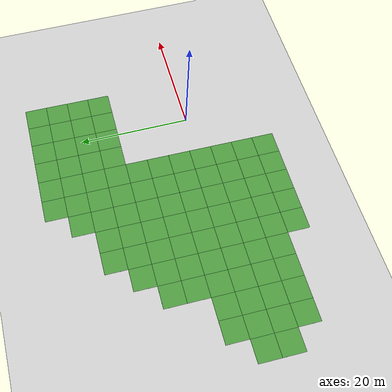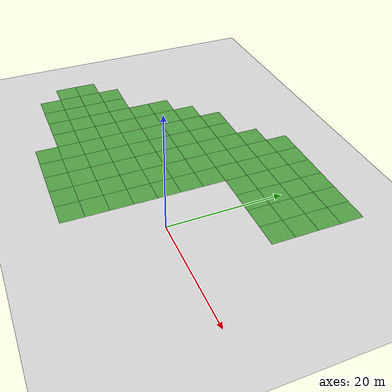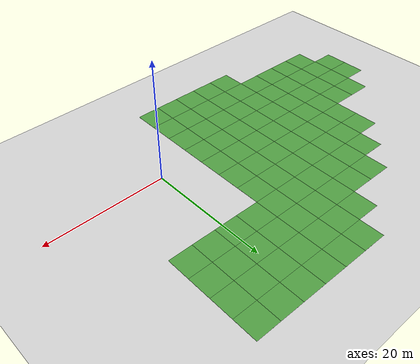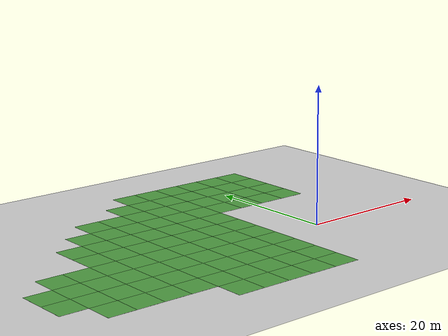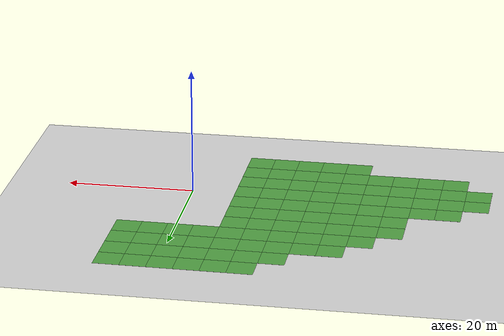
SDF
<sdf version="1.7">
 <world name="default">
  <model name="ground_plane">
   <static>1</static>
   <link name="link">
    <collision name="collision">
     <laser_retro>100</laser_retro>
     <geometry><plane><normal>0 0 1</normal><size>100 100</size></plane></geometry>
     <surface><friction><ode><mu>100</mu><mu2>50</mu2></ode></friction></surface>
    </collision>
    <visual name="visual">
     <laser_retro>100</laser_retro>
     <cast_shadows>0</cast_shadows>
     <geometry><plane><normal>0 0 1</normal><size>100 100</size></plane></geometry>
     <material>
      <script><uri>file://media/materials/scripts/gazebo.material</uri><name>Gazebo/Grey</name></script>
     </material>
    </visual>
   </link>
  </model>
  <model name="grass_plane_0">
   <static>1</static>
   <link name="link">
    <collision name="collision">
     <geometry><plane><normal>0 0 1</normal><size>100 100</size></plane></geometry>
     <surface><friction><ode><mu>0.5</mu><mu2>0.5</mu2></ode></friction></surface>
    </collision>
    <visual name="visual_0">
     <pose>-8 -8 0 0 -0 0</pose>
     <cast_shadows>0</cast_shadows>
     <geometry><plane><normal>0 0 1</normal><size>4 4</size></plane></geometry>
     <material>
      <script>
       <uri>model://grass_plane/materials/scripts</uri>
       <uri>model://grass_plane/materials/textures</uri>
       <name>vrc/grass</name>
      </script>
     </material>
    </visual>
    <visual name="visual_1">
     <pose>-4 -8 0 0 -0 0</pose>
     <cast_shadows>0</cast_shadows>
     <geometry><plane><normal>0 0 1</normal><size>4 4</size></plane></geometry>
     <material>
      <script>
       <uri>model://grass_plane/materials/scripts</uri>
       <uri>model://grass_plane/materials/textures</uri>
       <name>vrc/grass</name>
      </script>
     </material>
    </visual>
    <visual name="visual_2">
     <pose>0 -8 0 0 -0 0</pose>
     <cast_shadows>0</cast_shadows>
     <geometry><plane><normal>0 0 1</normal><size>4 4</size></plane></geometry>
     <material>
      <script>
       <uri>model://grass_plane/materials/scripts</uri>
       <uri>model://grass_plane/materials/textures</uri>
       <name>vrc/grass</name>
      </script>
     </material>
    </visual>
    <visual name="visual_3">
     <pose>4 -8 0 0 -0 0</pose>
     <cast_shadows>0</cast_shadows>
     <geometry><plane><normal>0 0 1</normal><size>4 4</size></plane></geometry>
     <material>
      <script>
       <uri>model://grass_plane/materials/scripts</uri>
       <uri>model://grass_plane/materials/textures</uri>
       <name>vrc/grass</name>
      </script>
     </material>
    </visual>
    <visual name="visual_4">
     <pose>8 -8 0 0 -0 0</pose>
     <cast_shadows>0</cast_shadows>
     <geometry><plane><normal>0 0 1</normal><size>4 4</size></plane></geometry>
     <material>
      <script>
       <uri>model://grass_plane/materials/scripts</uri>
       <uri>model://grass_plane/materials/textures</uri>
       <name>vrc/grass</name>
      </script>
     </material>
    </visual>
    <visual name="visual_5">
     <pose>12 -8 0 0 -0 0</pose>
     <cast_shadows>0</cast_shadows>
     <geometry><plane><normal>0 0 1</normal><size>4 4</size></plane></geometry>
     <material>
      <script>
       <uri>model://grass_plane/materials/scripts</uri>
       <uri>model://grass_plane/materials/textures</uri>
       <name>vrc/grass</name>
      </script>
     </material>
    </visual>
    <visual name="visual_6">
     <pose>-8 -4 0 0 -0 0</pose>
     <cast_shadows>0</cast_shadows>
     <geometry><plane><normal>0 0 1</normal><size>4 4</size></plane></geometry>
     <material>
      <script>
       <uri>model://grass_plane/materials/scripts</uri>
       <uri>model://grass_plane/materials/textures</uri>
       <name>vrc/grass</name>
      </script>
     </material>
    </visual>
    <visual name="visual_7">
     <pose>-4 -4 0 0 -0 0</pose>
     <cast_shadows>0</cast_shadows>
     <geometry><plane><normal>0 0 1</normal><size>4 4</size></plane></geometry>
     <material>
      <script>
       <uri>model://grass_plane/materials/scripts</uri>
       <uri>model://grass_plane/materials/textures</uri>
       <name>vrc/grass</name>
      </script>
     </material>
    </visual>
    <visual name="visual_8">
     <pose>0 -4 0 0 -0 0</pose>
     <cast_shadows>0</cast_shadows>
     <geometry><plane><normal>0 0 1</normal><size>4 4</size></plane></geometry>
     <material>
      <script>
       <uri>model://grass_plane/materials/scripts</uri>
       <uri>model://grass_plane/materials/textures</uri>
       <name>vrc/grass</name>
      </script>
     </material>
    </visual>
    <visual name="visual_9">
     <pose>4 -4 0 0 -0 0</pose>
     <cast_shadows>0</cast_shadows>
     <geometry><plane><normal>0 0 1</normal><size>4 4</size></plane></geometry>
     <material>
      <script>
       <uri>model://grass_plane/materials/scripts</uri>
       <uri>model://grass_plane/materials/textures</uri>
       <name>vrc/grass</name>
      </script>
     </material>
    </visual>
    <visual name="visual_10">
     <pose>8 -4 0 0 -0 0</pose>
     <cast_shadows>0</cast_shadows>
     <geometry><plane><normal>0 0 1</normal><size>4 4</size></plane></geometry>
     <material>
      <script>
       <uri>model://grass_plane/materials/scripts</uri>
       <uri>model://grass_plane/materials/textures</uri>
       <name>vrc/grass</name>
      </script>
     </material>
    </visual>
    <visual name="visual_11">
     <pose>12 -4 0 0 -0 0</pose>
     <cast_shadows>0</cast_shadows>
     <geometry><plane><normal>0 0 1</normal><size>4 4</size></plane></geometry>
     <material>
      <script>
       <uri>model://grass_plane/materials/scripts</uri>
       <uri>model://grass_plane/materials/textures</uri>
       <name>vrc/grass</name>
      </script>
     </material>
    </visual>
    <visual name="visual_12">
     <pose>16 -4 0 0 -0 0</pose>
     <cast_shadows>0</cast_shadows>
     <geometry><plane><normal>0 0 1</normal><size>4 4</size></plane></geometry>
     <material>
      <script>
       <uri>model://grass_plane/materials/scripts</uri>
       <uri>model://grass_plane/materials/textures</uri>
       <name>vrc/grass</name>
      </script>
     </material>
    </visual>
    <visual name="visual_13">
     <pose>-8 0 0 0 -0 0</pose>
     <cast_shadows>0</cast_shadows>
     <geometry><plane><normal>0 0 1</normal><size>4 4</size></plane></geometry>
     <material>
      <script>
       <uri>model://grass_plane/materials/scripts</uri>
       <uri>model://grass_plane/materials/textures</uri>
       <name>vrc/grass</name>
      </script>
     </material>
    </visual>
    <visual name="visual_14">
     <pose>-4 0 0 0 -0 0</pose>
     <cast_shadows>0</cast_shadows>
     <geometry><plane><normal>0 0 1</normal><size>4 4</size></plane></geometry>
     <material>
      <script>
       <uri>model://grass_plane/materials/scripts</uri>
       <uri>model://grass_plane/materials/textures</uri>
       <name>vrc/grass</name>
      </script>
     </material>
    </visual>
    <visual name="visual_15">
     <cast_shadows>0</cast_shadows>
     <geometry><plane><normal>0 0 1</normal><size>4 4</size></plane></geometry>
     <material>
      <script>
       <uri>model://grass_plane/materials/scripts</uri>
       <uri>model://grass_plane/materials/textures</uri>
       <name>vrc/grass</name>
      </script>
     </material>
    </visual>
    <visual name="visual_16">
     <pose>4 0 0 0 -0 0</pose>
     <cast_shadows>0</cast_shadows>
     <geometry><plane><normal>0 0 1</normal><size>4 4</size></plane></geometry>
     <material>
      <script>
       <uri>model://grass_plane/materials/scripts</uri>
       <uri>model://grass_plane/materials/textures</uri>
       <name>vrc/grass</name>
      </script>
     </material>
    </visual>
    <visual name="visual_17">
     <pose>8 0 0 0 -0 0</pose>
     <cast_shadows>0</cast_shadows>
     <geometry><plane><normal>0 0 1</normal><size>4 4</size></plane></geometry>
     <material>
      <script>
       <uri>model://grass_plane/materials/scripts</uri>
       <uri>model://grass_plane/materials/textures</uri>
       <name>vrc/grass</name>
      </script>
     </material>
    </visual>
    <visual name="visual_18">
     <pose>12 0 0 0 -0 0</pose>
     <cast_shadows>0</cast_shadows>
     <geometry><plane><normal>0 0 1</normal><size>4 4</size></plane></geometry>
     <material>
      <script>
       <uri>model://grass_plane/materials/scripts</uri>
       <uri>model://grass_plane/materials/textures</uri>
       <name>vrc/grass</name>
      </script>
     </material>
    </visual>
    <visual name="visual_19">
     <pose>16 0 0 0 -0 0</pose>
     <cast_shadows>0</cast_shadows>
     <geometry><plane><normal>0 0 1</normal><size>4 4</size></plane></geometry>
     <material>
      <script>
       <uri>model://grass_plane/materials/scripts</uri>
       <uri>model://grass_plane/materials/textures</uri>
       <name>vrc/grass</name>
      </script>
     </material>
    </visual>
    <visual name="visual_20">
     <pose>20 0 0 0 -0 0</pose>
     <cast_shadows>0</cast_shadows>
     <geometry><plane><normal>0 0 1</normal><size>4 4</size></plane></geometry>
     <material>
      <script>
       <uri>model://grass_plane/materials/scripts</uri>
       <uri>model://grass_plane/materials/textures</uri>
       <name>vrc/grass</name>
      </script>
     </material>
    </visual>
    <visual name="visual_21">
     <pose>24 0 0 0 -0 0</pose>
     <cast_shadows>0</cast_shadows>
     <geometry><plane><normal>0 0 1</normal><size>4 4</size></plane></geometry>
     <material>
      <script>
       <uri>model://grass_plane/materials/scripts</uri>
       <uri>model://grass_plane/materials/textures</uri>
       <name>vrc/grass</name>
      </script>
     </material>
    </visual>
    <visual name="visual_22">
     <pose>-8 4 0 0 -0 0</pose>
     <cast_shadows>0</cast_shadows>
     <geometry><plane><normal>0 0 1</normal><size>4 4</size></plane></geometry>
     <material>
      <script>
       <uri>model://grass_plane/materials/scripts</uri>
       <uri>model://grass_plane/materials/textures</uri>
       <name>vrc/grass</name>
      </script>
     </material>
    </visual>
    <visual name="visual_23">
     <pose>-4 4 0 0 -0 0</pose>
     <cast_shadows>0</cast_shadows>
     <geometry><plane><normal>0 0 1</normal><size>4 4</size></plane></geometry>
     <material>
      <script>
       <uri>model://grass_plane/materials/scripts</uri>
       <uri>model://grass_plane/materials/textures</uri>
       <name>vrc/grass</name>
      </script>
     </material>
    </visual>
    <visual name="visual_24">
     <pose>0 4 0 0 -0 0</pose>
     <cast_shadows>0</cast_shadows>
     <geometry><plane><normal>0 0 1</normal><size>4 4</size></plane></geometry>
     <material>
      <script>
       <uri>model://grass_plane/materials/scripts</uri>
       <uri>model://grass_plane/materials/textures</uri>
       <name>vrc/grass</name>
      </script>
     </material>
    </visual>
    <visual name="visual_25">
     <pose>4 4 0 0 -0 0</pose>
     <cast_shadows>0</cast_shadows>
     <geometry><plane><normal>0 0 1</normal><size>4 4</size></plane></geometry>
     <material>
      <script>
       <uri>model://grass_plane/materials/scripts</uri>
       <uri>model://grass_plane/materials/textures</uri>
       <name>vrc/grass</name>
      </script>
     </material>
    </visual>
    <visual name="visual_26">
     <pose>8 4 0 0 -0 0</pose>
     <cast_shadows>0</cast_shadows>
     <geometry><plane><normal>0 0 1</normal><size>4 4</size></plane></geometry>
     <material>
      <script>
       <uri>model://grass_plane/materials/scripts</uri>
       <uri>model://grass_plane/materials/textures</uri>
       <name>vrc/grass</name>
      </script>
     </material>
    </visual>
    <visual name="visual_27">
     <pose>12 4 0 0 -0 0</pose>
     <cast_shadows>0</cast_shadows>
     <geometry><plane><normal>0 0 1</normal><size>4 4</size></plane></geometry>
     <material>
      <script>
       <uri>model://grass_plane/materials/scripts</uri>
       <uri>model://grass_plane/materials/textures</uri>
       <name>vrc/grass</name>
      </script>
     </material>
    </visual>
    <visual name="visual_28">
     <pose>16 4 0 0 -0 0</pose>
     <cast_shadows>0</cast_shadows>
     <geometry><plane><normal>0 0 1</normal><size>4 4</size></plane></geometry>
     <material>
      <script>
       <uri>model://grass_plane/materials/scripts</uri>
       <uri>model://grass_plane/materials/textures</uri>
       <name>vrc/grass</name>
      </script>
     </material>
    </visual>
    <visual name="visual_29">
     <pose>20 4 0 0 -0 0</pose>
     <cast_shadows>0</cast_shadows>
     <geometry><plane><normal>0 0 1</normal><size>4 4</size></plane></geometry>
     <material>
      <script>
       <uri>model://grass_plane/materials/scripts</uri>
       <uri>model://grass_plane/materials/textures</uri>
       <name>vrc/grass</name>
      </script>
     </material>
    </visual>
    <visual name="visual_30">
     <pose>24 4 0 0 -0 0</pose>
     <cast_shadows>0</cast_shadows>
     <geometry><plane><normal>0 0 1</normal><size>4 4</size></plane></geometry>
     <material>
      <script>
       <uri>model://grass_plane/materials/scripts</uri>
       <uri>model://grass_plane/materials/textures</uri>
       <name>vrc/grass</name>
      </script>
     </material>
    </visual>
    <visual name="visual_31">
     <pose>28 4 0 0 -0 0</pose>
     <cast_shadows>0</cast_shadows>
     <geometry><plane><normal>0 0 1</normal><size>4 4</size></plane></geometry>
     <material>
      <script>
       <uri>model://grass_plane/materials/scripts</uri>
       <uri>model://grass_plane/materials/textures</uri>
       <name>vrc/grass</name>
      </script>
     </material>
    </visual>
    <visual name="visual_32">
     <pose>8 8 0 0 -0 0</pose>
     <cast_shadows>0</cast_shadows>
     <geometry><plane><normal>0 0 1</normal><size>4 4</size></plane></geometry>
     <material>
      <script>
       <uri>model://grass_plane/materials/scripts</uri>
       <uri>model://grass_plane/materials/textures</uri>
       <name>vrc/grass</name>
      </script>
     </material>
    </visual>
    <visual name="visual_33">
     <pose>12 8 0 0 -0 0</pose>
     <cast_shadows>0</cast_shadows>
     <geometry><plane><normal>0 0 1</normal><size>4 4</size></plane></geometry>
     <material>
      <script>
       <uri>model://grass_plane/materials/scripts</uri>
       <uri>model://grass_plane/materials/textures</uri>
       <name>vrc/grass</name>
      </script>
     </material>
    </visual>
    <visual name="visual_34">
     <pose>16 8 0 0 -0 0</pose>
     <cast_shadows>0</cast_shadows>
     <geometry><plane><normal>0 0 1</normal><size>4 4</size></plane></geometry>
     <material>
      <script>
       <uri>model://grass_plane/materials/scripts</uri>
       <uri>model://grass_plane/materials/textures</uri>
       <name>vrc/grass</name>
      </script>
     </material>
    </visual>
    <visual name="visual_35">
     <pose>20 8 0 0 -0 0</pose>
     <cast_shadows>0</cast_shadows>
     <geometry><plane><normal>0 0 1</normal><size>4 4</size></plane></geometry>
     <material>
      <script>
       <uri>model://grass_plane/materials/scripts</uri>
       <uri>model://grass_plane/materials/textures</uri>
       <name>vrc/grass</name>
      </script>
     </material>
    </visual>
    <visual name="visual_36">
     <pose>24 8 0 0 -0 0</pose>
     <cast_shadows>0</cast_shadows>
     <geometry><plane><normal>0 0 1</normal><size>4 4</size></plane></geometry>
     <material>
      <script>
       <uri>model://grass_plane/materials/scripts</uri>
       <uri>model://grass_plane/materials/textures</uri>
       <name>vrc/grass</name>
      </script>
     </material>
    </visual>
    <visual name="visual_37">
     <pose>28 8 0 0 -0 0</pose>
     <cast_shadows>0</cast_shadows>
     <geometry><plane><normal>0 0 1</normal><size>4 4</size></plane></geometry>
     <material>
      <script>
       <uri>model://grass_plane/materials/scripts</uri>
       <uri>model://grass_plane/materials/textures</uri>
       <name>vrc/grass</name>
      </script>
     </material>
    </visual>
    <visual name="visual_38">
     <pose>32 8 0 0 -0 0</pose>
     <cast_shadows>0</cast_shadows>
     <geometry><plane><normal>0 0 1</normal><size>4 4</size></plane></geometry>
     <material>
      <script>
       <uri>model://grass_plane/materials/scripts</uri>
       <uri>model://grass_plane/materials/textures</uri>
       <name>vrc/grass</name>
      </script>
     </material>
    </visual>
    <visual name="visual_39">
     <pose>8 12 0 0 -0 0</pose>
     <cast_shadows>0</cast_shadows>
     <geometry><plane><normal>0 0 1</normal><size>4 4</size></plane></geometry>
     <material>
      <script>
       <uri>model://grass_plane/materials/scripts</uri>
       <uri>model://grass_plane/materials/textures</uri>
       <name>vrc/grass</name>
      </script>
     </material>
    </visual>
    <visual name="visual_40">
     <pose>12 12 0 0 -0 0</pose>
     <cast_shadows>0</cast_shadows>
     <geometry><plane><normal>0 0 1</normal><size>4 4</size></plane></geometry>
     <material>
      <script>
       <uri>model://grass_plane/materials/scripts</uri>
       <uri>model://grass_plane/materials/textures</uri>
       <name>vrc/grass</name>
      </script>
     </material>
    </visual>
    <visual name="visual_41">
     <pose>16 12 0 0 -0 0</pose>
     <cast_shadows>0</cast_shadows>
     <geometry><plane><normal>0 0 1</normal><size>4 4</size></plane></geometry>
     <material>
      <script>
       <uri>model://grass_plane/materials/scripts</uri>
       <uri>model://grass_plane/materials/textures</uri>
       <name>vrc/grass</name>
      </script>
     </material>
    </visual>
    <visual name="visual_42">
     <pose>20 12 0 0 -0 0</pose>
     <cast_shadows>0</cast_shadows>
     <geometry><plane><normal>0 0 1</normal><size>4 4</size></plane></geometry>
     <material>
      <script>
       <uri>model://grass_plane/materials/scripts</uri>
       <uri>model://grass_plane/materials/textures</uri>
       <name>vrc/grass</name>
      </script>
     </material>
    </visual>
    <visual name="visual_43">
     <pose>24 12 0 0 -0 0</pose>
     <cast_shadows>0</cast_shadows>
     <geometry><plane><normal>0 0 1</normal><size>4 4</size></plane></geometry>
     <material>
      <script>
       <uri>model://grass_plane/materials/scripts</uri>
       <uri>model://grass_plane/materials/textures</uri>
       <name>vrc/grass</name>
      </script>
     </material>
    </visual>
    <visual name="visual_44">
     <pose>28 12 0 0 -0 0</pose>
     <cast_shadows>0</cast_shadows>
     <geometry><plane><normal>0 0 1</normal><size>4 4</size></plane></geometry>
     <material>
      <script>
       <uri>model://grass_plane/materials/scripts</uri>
       <uri>model://grass_plane/materials/textures</uri>
       <name>vrc/grass</name>
      </script>
     </material>
    </visual>
    <visual name="visual_45">
     <pose>32 12 0 0 -0 0</pose>
     <cast_shadows>0</cast_shadows>
     <geometry><plane><normal>0 0 1</normal><size>4 4</size></plane></geometry>
     <material>
      <script>
       <uri>model://grass_plane/materials/scripts</uri>
       <uri>model://grass_plane/materials/textures</uri>
       <name>vrc/grass</name>
      </script>
     </material>
    </visual>
    <visual name="visual_46">
     <pose>8 16 0 0 -0 0</pose>
     <cast_shadows>0</cast_shadows>
     <geometry><plane><normal>0 0 1</normal><size>4 4</size></plane></geometry>
     <material>
      <script>
       <uri>model://grass_plane/materials/scripts</uri>
       <uri>model://grass_plane/materials/textures</uri>
       <name>vrc/grass</name>
      </script>
     </material>
    </visual>
    <visual name="visual_47">
     <pose>12 16 0 0 -0 0</pose>
     <cast_shadows>0</cast_shadows>
     <geometry><plane><normal>0 0 1</normal><size>4 4</size></plane></geometry>
     <material>
      <script>
       <uri>model://grass_plane/materials/scripts</uri>
       <uri>model://grass_plane/materials/textures</uri>
       <name>vrc/grass</name>
      </script>
     </material>
    </visual>
    <visual name="visual_48">
     <pose>16 16 0 0 -0 0</pose>
     <cast_shadows>0</cast_shadows>
     <geometry><plane><normal>0 0 1</normal><size>4 4</size></plane></geometry>
     <material>
      <script>
       <uri>model://grass_plane/materials/scripts</uri>
       <uri>model://grass_plane/materials/textures</uri>
       <name>vrc/grass</name>
      </script>
     </material>
    </visual>
    <visual name="visual_49">
     <pose>20 16 0 0 -0 0</pose>
     <cast_shadows>0</cast_shadows>
     <geometry><plane><normal>0 0 1</normal><size>4 4</size></plane></geometry>
     <material>
      <script>
       <uri>model://grass_plane/materials/scripts</uri>
       <uri>model://grass_plane/materials/textures</uri>
       <name>vrc/grass</name>
      </script>
     </material>
    </visual>
    <visual name="visual_50">
     <pose>24 16 0 0 -0 0</pose>
     <cast_shadows>0</cast_shadows>
     <geometry><plane><normal>0 0 1</normal><size>4 4</size></plane></geometry>
     <material>
      <script>
       <uri>model://grass_plane/materials/scripts</uri>
       <uri>model://grass_plane/materials/textures</uri>
       <name>vrc/grass</name>
      </script>
     </material>
    </visual>
    <visual name="visual_51">
     <pose>28 16 0 0 -0 0</pose>
     <cast_shadows>0</cast_shadows>
     <geometry><plane><normal>0 0 1</normal><size>4 4</size></plane></geometry>
     <material>
      <script>
       <uri>model://grass_plane/materials/scripts</uri>
       <uri>model://grass_plane/materials/textures</uri>
       <name>vrc/grass</name>
      </script>
     </material>
    </visual>
    <visual name="visual_52">
     <pose>32 16 0 0 -0 0</pose>
     <cast_shadows>0</cast_shadows>
     <geometry><plane><normal>0 0 1</normal><size>4 4</size></plane></geometry>
     <material>
      <script>
       <uri>model://grass_plane/materials/scripts</uri>
       <uri>model://grass_plane/materials/textures</uri>
       <name>vrc/grass</name>
      </script>
     </material>
    </visual>
    <visual name="visual_53">
     <pose>36 16 0 0 -0 0</pose>
     <cast_shadows>0</cast_shadows>
     <geometry><plane><normal>0 0 1</normal><size>4 4</size></plane></geometry>
     <material>
      <script>
       <uri>model://grass_plane/materials/scripts</uri>
       <uri>model://grass_plane/materials/textures</uri>
       <name>vrc/grass</name>
      </script>
     </material>
    </visual>
    <visual name="visual_54">
     <pose>40 16 0 0 -0 0</pose>
     <cast_shadows>0</cast_shadows>
     <geometry><plane><normal>0 0 1</normal><size>4 4</size></plane></geometry>
     <material>
      <script>
       <uri>model://grass_plane/materials/scripts</uri>
       <uri>model://grass_plane/materials/textures</uri>
       <name>vrc/grass</name>
      </script>
     </material>
    </visual>
    <visual name="visual_55">
     <pose>8 20 0 0 -0 0</pose>
     <cast_shadows>0</cast_shadows>
     <geometry><plane><normal>0 0 1</normal><size>4 4</size></plane></geometry>
     <material>
      <script>
       <uri>model://grass_plane/materials/scripts</uri>
       <uri>model://grass_plane/materials/textures</uri>
       <name>vrc/grass</name>
      </script>
     </material>
    </visual>
    <visual name="visual_56">
     <pose>12 20 0 0 -0 0</pose>
     <cast_shadows>0</cast_shadows>
     <geometry><plane><normal>0 0 1</normal><size>4 4</size></plane></geometry>
     <material>
      <script>
       <uri>model://grass_plane/materials/scripts</uri>
       <uri>model://grass_plane/materials/textures</uri>
       <name>vrc/grass</name>
      </script>
     </material>
    </visual>
    <visual name="visual_57">
     <pose>16 20 0 0 -0 0</pose>
     <cast_shadows>0</cast_shadows>
     <geometry><plane><normal>0 0 1</normal><size>4 4</size></plane></geometry>
     <material>
      <script>
       <uri>model://grass_plane/materials/scripts</uri>
       <uri>model://grass_plane/materials/textures</uri>
       <name>vrc/grass</name>
      </script>
     </material>
    </visual>
    <visual name="visual_58">
     <pose>20 20 0 0 -0 0</pose>
     <cast_shadows>0</cast_shadows>
     <geometry><plane><normal>0 0 1</normal><size>4 4</size></plane></geometry>
     <material>
      <script>
       <uri>model://grass_plane/materials/scripts</uri>
       <uri>model://grass_plane/materials/textures</uri>
       <name>vrc/grass</name>
      </script>
     </material>
    </visual>
    <visual name="visual_59">
     <pose>24 20 0 0 -0 0</pose>
     <cast_shadows>0</cast_shadows>
     <geometry><plane><normal>0 0 1</normal><size>4 4</size></plane></geometry>
     <material>
      <script>
       <uri>model://grass_plane/materials/scripts</uri>
       <uri>model://grass_plane/materials/textures</uri>
       <name>vrc/grass</name>
      </script>
     </material>
    </visual>
    <visual name="visual_60">
     <pose>28 20 0 0 -0 0</pose>
     <cast_shadows>0</cast_shadows>
     <geometry><plane><normal>0 0 1</normal><size>4 4</size></plane></geometry>
     <material>
      <script>
       <uri>model://grass_plane/materials/scripts</uri>
       <uri>model://grass_plane/materials/textures</uri>
       <name>vrc/grass</name>
      </script>
     </material>
    </visual>
    <visual name="visual_61">
     <pose>32 20 0 0 -0 0</pose>
     <cast_shadows>0</cast_shadows>
     <geometry><plane><normal>0 0 1</normal><size>4 4</size></plane></geometry>
     <material>
      <script>
       <uri>model://grass_plane/materials/scripts</uri>
       <uri>model://grass_plane/materials/textures</uri>
       <name>vrc/grass</name>
      </script>
     </material>
    </visual>
    <visual name="visual_62">
     <pose>36 20 0 0 -0 0</pose>
     <cast_shadows>0</cast_shadows>
     <geometry><plane><normal>0 0 1</normal><size>4 4</size></plane></geometry>
     <material>
      <script>
       <uri>model://grass_plane/materials/scripts</uri>
       <uri>model://grass_plane/materials/textures</uri>
       <name>vrc/grass</name>
      </script>
     </material>
    </visual>
    <visual name="visual_63">
     <pose>40 20 0 0 -0 0</pose>
     <cast_shadows>0</cast_shadows>
     <geometry><plane><normal>0 0 1</normal><size>4 4</size></plane></geometry>
     <material>
      <script>
       <uri>model://grass_plane/materials/scripts</uri>
       <uri>model://grass_plane/materials/textures</uri>
       <name>vrc/grass</name>
      </script>
     </material>
    </visual>
    <visual name="visual_63a">
     <pose>44 20 0 0 -0 0</pose>
     <cast_shadows>0</cast_shadows>
     <geometry><plane><normal>0 0 1</normal><size>4 4</size></plane></geometry>
     <material>
      <script>
       <uri>model://grass_plane/materials/scripts</uri>
       <uri>model://grass_plane/materials/textures</uri>
       <name>vrc/grass</name>
      </script>
     </material>
    </visual>
    <visual name="visual_64">
     <pose>8 24 0 0 -0 0</pose>
     <cast_shadows>0</cast_shadows>
     <geometry><plane><normal>0 0 1</normal><size>4 4</size></plane></geometry>
     <material>
      <script>
       <uri>model://grass_plane/materials/scripts</uri>
       <uri>model://grass_plane/materials/textures</uri>
       <name>vrc/grass</name>
      </script>
     </material>
    </visual>
    <visual name="visual_65">
     <pose>12 24 0 0 -0 0</pose>
     <cast_shadows>0</cast_shadows>
     <geometry><plane><normal>0 0 1</normal><size>4 4</size></plane></geometry>
     <material>
      <script>
       <uri>model://grass_plane/materials/scripts</uri>
       <uri>model://grass_plane/materials/textures</uri>
       <name>vrc/grass</name>
      </script>
     </material>
    </visual>
    <visual name="visual_66">
     <pose>16 24 0 0 -0 0</pose>
     <cast_shadows>0</cast_shadows>
     <geometry><plane><normal>0 0 1</normal><size>4 4</size></plane></geometry>
     <material>
      <script>
       <uri>model://grass_plane/materials/scripts</uri>
       <uri>model://grass_plane/materials/textures</uri>
       <name>vrc/grass</name>
      </script>
     </material>
    </visual>
    <visual name="visual_67">
     <pose>20 24 0 0 -0 0</pose>
     <cast_shadows>0</cast_shadows>
     <geometry><plane><normal>0 0 1</normal><size>4 4</size></plane></geometry>
     <material>
      <script>
       <uri>model://grass_plane/materials/scripts</uri>
       <uri>model://grass_plane/materials/textures</uri>
       <name>vrc/grass</name>
      </script>
     </material>
    </visual>
    <visual name="visual_68">
     <pose>24 24 0 0 -0 0</pose>
     <cast_shadows>0</cast_shadows>
     <geometry><plane><normal>0 0 1</normal><size>4 4</size></plane></geometry>
     <material>
      <script>
       <uri>model://grass_plane/materials/scripts</uri>
       <uri>model://grass_plane/materials/textures</uri>
       <name>vrc/grass</name>
      </script>
     </material>
    </visual>
    <visual name="visual_69">
     <pose>28 24 0 0 -0 0</pose>
     <cast_shadows>0</cast_shadows>
     <geometry><plane><normal>0 0 1</normal><size>4 4</size></plane></geometry>
     <material>
      <script>
       <uri>model://grass_plane/materials/scripts</uri>
       <uri>model://grass_plane/materials/textures</uri>
       <name>vrc/grass</name>
      </script>
     </material>
    </visual>
    <visual name="visual_70">
     <pose>32 24 0 0 -0 0</pose>
     <cast_shadows>0</cast_shadows>
     <geometry><plane><normal>0 0 1</normal><size>4 4</size></plane></geometry>
     <material>
      <script>
       <uri>model://grass_plane/materials/scripts</uri>
       <uri>model://grass_plane/materials/textures</uri>
       <name>vrc/grass</name>
      </script>
     </material>
    </visual>
    <visual name="visual_71">
     <pose>36 24 0 0 -0 0</pose>
     <cast_shadows>0</cast_shadows>
     <geometry><plane><normal>0 0 1</normal><size>4 4</size></plane></geometry>
     <material>
      <script>
       <uri>model://grass_plane/materials/scripts</uri>
       <uri>model://grass_plane/materials/textures</uri>
       <name>vrc/grass</name>
      </script>
     </material>
    </visual>
    <visual name="visual_72">
     <pose>40 24 0 0 -0 0</pose>
     <cast_shadows>0</cast_shadows>
     <geometry><plane><normal>0 0 1</normal><size>4 4</size></plane></geometry>
     <material>
      <script>
       <uri>model://grass_plane/materials/scripts</uri>
       <uri>model://grass_plane/materials/textures</uri>
       <name>vrc/grass</name>
      </script>
     </material>
    </visual>
    <visual name="visual_72a">
     <pose>44 24 0 0 -0 0</pose>
     <cast_shadows>0</cast_shadows>
     <geometry><plane><normal>0 0 1</normal><size>4 4</size></plane></geometry>
     <material>
      <script>
       <uri>model://grass_plane/materials/scripts</uri>
       <uri>model://grass_plane/materials/textures</uri>
       <name>vrc/grass</name>
      </script>
     </material>
    </visual>
    <visual name="visual_73">
     <pose>8 28 0 0 -0 0</pose>
     <cast_shadows>0</cast_shadows>
     <geometry><plane><normal>0 0 1</normal><size>4 4</size></plane></geometry>
     <material>
      <script>
       <uri>model://grass_plane/materials/scripts</uri>
       <uri>model://grass_plane/materials/textures</uri>
       <name>vrc/grass</name>
      </script>
     </material>
    </visual>
    <visual name="visual_74">
     <pose>12 28 0 0 -0 0</pose>
     <cast_shadows>0</cast_shadows>
     <geometry><plane><normal>0 0 1</normal><size>4 4</size></plane></geometry>
     <material>
      <script>
       <uri>model://grass_plane/materials/scripts</uri>
       <uri>model://grass_plane/materials/textures</uri>
       <name>vrc/grass</name>
      </script>
     </material>
    </visual>
    <visual name="visual_75">
     <pose>16 28 0 0 -0 0</pose>
     <cast_shadows>0</cast_shadows>
     <geometry><plane><normal>0 0 1</normal><size>4 4</size></plane></geometry>
     <material>
      <script>
       <uri>model://grass_plane/materials/scripts</uri>
       <uri>model://grass_plane/materials/textures</uri>
       <name>vrc/grass</name>
      </script>
     </material>
    </visual>
    <visual name="visual_76">
     <pose>20 28 0 0 -0 0</pose>
     <cast_shadows>0</cast_shadows>
     <geometry><plane><normal>0 0 1</normal><size>4 4</size></plane></geometry>
     <material>
      <script>
       <uri>model://grass_plane/materials/scripts</uri>
       <uri>model://grass_plane/materials/textures</uri>
       <name>vrc/grass</name>
      </script>
     </material>
    </visual>
    <visual name="visual_77">
     <pose>24 28 0 0 -0 0</pose>
     <cast_shadows>0</cast_shadows>
     <geometry><plane><normal>0 0 1</normal><size>4 4</size></plane></geometry>
     <material>
      <script>
       <uri>model://grass_plane/materials/scripts</uri>
       <uri>model://grass_plane/materials/textures</uri>
       <name>vrc/grass</name>
      </script>
     </material>
    </visual>
    <visual name="visual_78">
     <pose>28 28 0 0 -0 0</pose>
     <cast_shadows>0</cast_shadows>
     <geometry><plane><normal>0 0 1</normal><size>4 4</size></plane></geometry>
     <material>
      <script>
       <uri>model://grass_plane/materials/scripts</uri>
       <uri>model://grass_plane/materials/textures</uri>
       <name>vrc/grass</name>
      </script>
     </material>
    </visual>
    <visual name="visual_79">
     <pose>32 28 0 0 -0 0</pose>
     <cast_shadows>0</cast_shadows>
     <geometry><plane><normal>0 0 1</normal><size>4 4</size></plane></geometry>
     <material>
      <script>
       <uri>model://grass_plane/materials/scripts</uri>
       <uri>model://grass_plane/materials/textures</uri>
       <name>vrc/grass</name>
      </script>
     </material>
    </visual>
    <visual name="visual_80">
     <pose>36 28 0 0 -0 0</pose>
     <cast_shadows>0</cast_shadows>
     <geometry><plane><normal>0 0 1</normal><size>4 4</size></plane></geometry>
     <material>
      <script>
       <uri>model://grass_plane/materials/scripts</uri>
       <uri>model://grass_plane/materials/textures</uri>
       <name>vrc/grass</name>
      </script>
     </material>
    </visual>
    <visual name="visual_81">
     <pose>40 28 0 0 -0 0</pose>
     <cast_shadows>0</cast_shadows>
     <geometry><plane><normal>0 0 1</normal><size>4 4</size></plane></geometry>
     <material>
      <script>
       <uri>model://grass_plane/materials/scripts</uri>
       <uri>model://grass_plane/materials/textures</uri>
       <name>vrc/grass</name>
      </script>
     </material>
    </visual>
    <visual name="visual_82">
     <pose>8 32 0 0 -0 0</pose>
     <cast_shadows>0</cast_shadows>
     <geometry><plane><normal>0 0 1</normal><size>4 4</size></plane></geometry>
     <material>
      <script>
       <uri>model://grass_plane/materials/scripts</uri>
       <uri>model://grass_plane/materials/textures</uri>
       <name>vrc/grass</name>
      </script>
     </material>
    </visual>
    <visual name="visual_83">
     <pose>12 32 0 0 -0 0</pose>
     <cast_shadows>0</cast_shadows>
     <geometry><plane><normal>0 0 1</normal><size>4 4</size></plane></geometry>
     <material>
      <script>
       <uri>model://grass_plane/materials/scripts</uri>
       <uri>model://grass_plane/materials/textures</uri>
       <name>vrc/grass</name>
      </script>
     </material>
    </visual>
    <visual name="visual_84">
     <pose>16 32 0 0 -0 0</pose>
     <cast_shadows>0</cast_shadows>
     <geometry><plane><normal>0 0 1</normal><size>4 4</size></plane></geometry>
     <material>
      <script>
       <uri>model://grass_plane/materials/scripts</uri>
       <uri>model://grass_plane/materials/textures</uri>
       <name>vrc/grass</name>
      </script>
     </material>
    </visual>
    <visual name="visual_85">
     <pose>20 32 0 0 -0 0</pose>
     <cast_shadows>0</cast_shadows>
     <geometry><plane><normal>0 0 1</normal><size>4 4</size></plane></geometry>
     <material>
      <script>
       <uri>model://grass_plane/materials/scripts</uri>
       <uri>model://grass_plane/materials/textures</uri>
       <name>vrc/grass</name>
      </script>
     </material>
    </visual>
    <visual name="visual_86">
     <pose>24 32 0 0 -0 0</pose>
     <cast_shadows>0</cast_shadows>
     <geometry><plane><normal>0 0 1</normal><size>4 4</size></plane></geometry>
     <material>
      <script>
       <uri>model://grass_plane/materials/scripts</uri>
       <uri>model://grass_plane/materials/textures</uri>
       <name>vrc/grass</name>
      </script>
     </material>
    </visual>
   </link>
   <pose>-0.6057 19.1699 0.1 0 -0 3.13319</pose>
  </model>
 </world>
</sdf>
